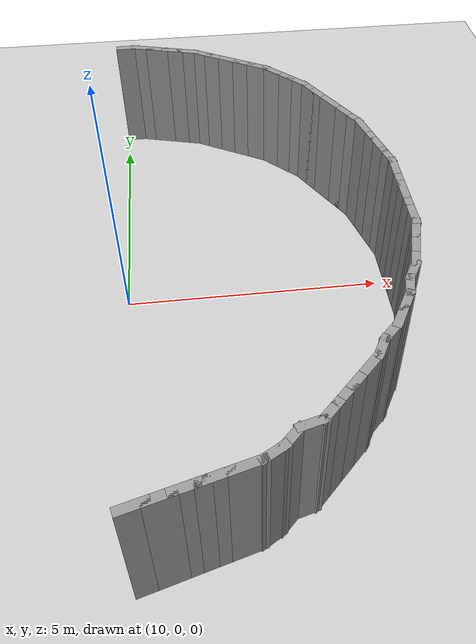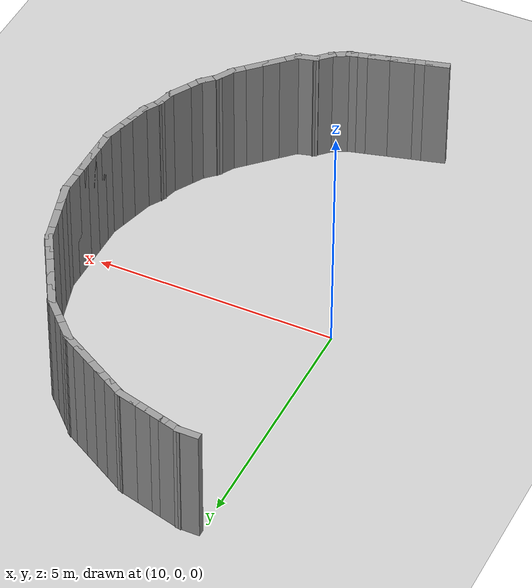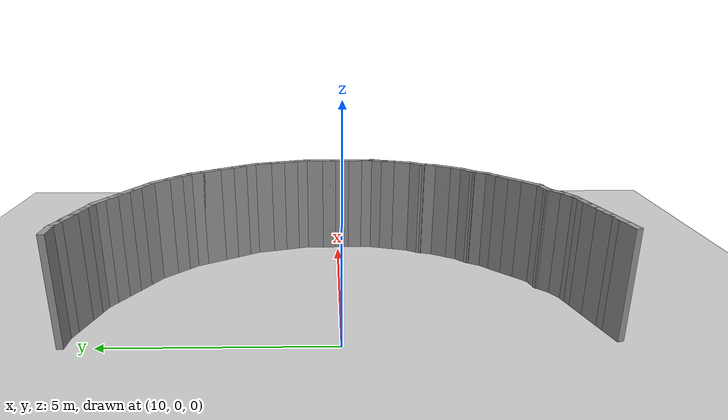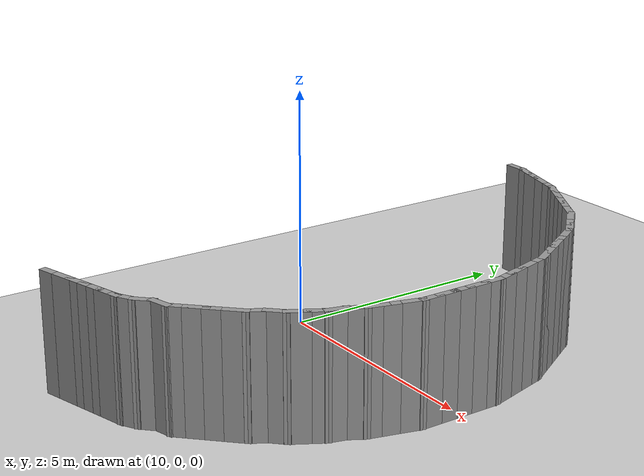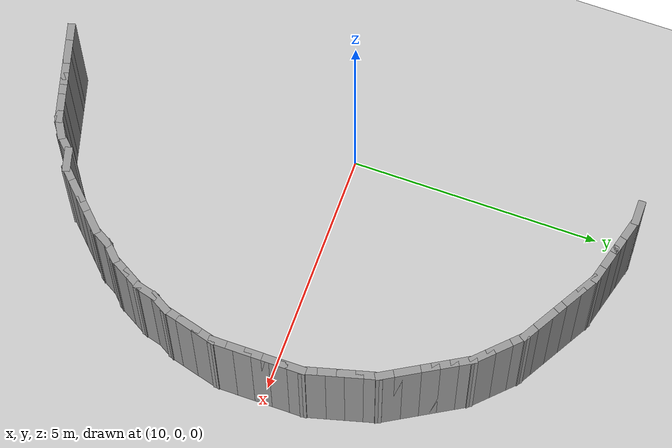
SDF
<sdf version="1.7">
 <world name="default">
  <model name="ground_plane">
   <static>1</static>
   <link name="link">
    <collision name="collision">
     <geometry><plane><normal>0 0 1</normal><size>100 100</size></plane></geometry>
     <surface><friction><ode><mu>100</mu><mu2>50</mu2></ode></friction></surface>
    </collision>
    <visual name="visual">
     <cast_shadows>0</cast_shadows>
     <geometry><plane><normal>0 0 1</normal><size>100 100</size></plane></geometry>
     <material>
      <script><uri>file://media/materials/scripts/gazebo.material</uri><name>Gazebo/Grey</name></script>
     </material>
    </visual>
   </link>
  </model>
  <model name="pool_wall">
   <pose>0.10892 -0.02488 0 0 -0 0</pose>
   <link name="Wall_1">
    <collision name="Wall_1_Collision">
     <geometry><box><size>0.5 0.15 2.5</size></box></geometry>
     <pose>0 0 1.25 0 -0 0</pose>
    </collision>
    <visual name="Wall_1_Visual">
     <pose>0 0 1.25 0 -0 0</pose>
     <geometry><box><size>0.5 0.15 2.5</size></box></geometry>
     <material>
      <script><uri>file://media/materials/scripts/gazebo.material</uri><name>Gazebo/Grey</name></script>
      <ambient>1 1 1 1</ambient>
     </material>
     <meta><layer>0</layer></meta>
    </visual>
    <pose>10.1206 5.7088 0 0 -0 0</pose>
   </link>
   <link name="Wall_10">
    <collision name="Wall_10_Collision">
     <geometry><box><size>0.5 0.15 2.5</size></box></geometry>
     <pose>0 0 1.25 0 -0 0</pose>
    </collision>
    <visual name="Wall_10_Visual">
     <pose>0 0 1.25 0 -0 0</pose>
     <geometry><box><size>0.5 0.15 2.5</size></box></geometry>
     <material>
      <script><uri>file://media/materials/scripts/gazebo.material</uri><name>Gazebo/Grey</name></script>
      <ambient>1 1 1 1</ambient>
     </material>
     <meta><layer>0</layer></meta>
    </visual>
    <pose>13.0119 4.55895 0 0 -0 -0.523599</pose>
   </link>
   <link name="Wall_11">
    <collision name="Wall_11_Collision">
     <geometry><box><size>0.5 0.15 2.5</size></box></geometry>
     <pose>0 0 1.25 0 -0 0</pose>
    </collision>
    <visual name="Wall_11_Visual">
     <pose>0 0 1.25 0 -0 0</pose>
     <geometry><box><size>0.5 0.15 2.5</size></box></geometry>
     <material>
      <script><uri>file://media/materials/scripts/gazebo.material</uri><name>Gazebo/Grey</name></script>
      <ambient>1 1 1 1</ambient>
     </material>
     <meta><layer>0</layer></meta>
    </visual>
    <pose>13.2872 4.3477 0 0 -0 -0.785398</pose>
   </link>
   <link name="Wall_12">
    <collision name="Wall_12_Collision">
     <geometry><box><size>0.5 0.15 2.5</size></box></geometry>
     <pose>0 0 1.25 0 -0 0</pose>
    </collision>
    <visual name="Wall_12_Visual">
     <pose>0 0 1.25 0 -0 0</pose>
     <geometry><box><size>0.5 0.15 2.5</size></box></geometry>
     <material>
      <script><uri>file://media/materials/scripts/gazebo.material</uri><name>Gazebo/Grey</name></script>
      <ambient>1 1 1 1</ambient>
     </material>
     <meta><layer>0</layer></meta>
    </visual>
    <pose>13.5347 4.10022 0 0 -0 -0.785398</pose>
   </link>
   <link name="Wall_13">
    <collision name="Wall_13_Collision">
     <geometry><box><size>0.5 0.15 2.5</size></box></geometry>
     <pose>0 0 1.25 0 -0 0</pose>
    </collision>
    <visual name="Wall_13_Visual">
     <pose>0 0 1.25 0 -0 0</pose>
     <geometry><box><size>0.5 0.15 2.5</size></box></geometry>
     <material>
      <script><uri>file://media/materials/scripts/gazebo.material</uri><name>Gazebo/Grey</name></script>
      <ambient>1 1 1 1</ambient>
     </material>
     <meta><layer>0</layer></meta>
    </visual>
    <pose>13.7822 3.85273 0 0 -0 -0.785398</pose>
   </link>
   <link name="Wall_14">
    <collision name="Wall_14_Collision">
     <geometry><box><size>0.5 0.15 2.5</size></box></geometry>
     <pose>0 0 1.25 0 -0 0</pose>
    </collision>
    <visual name="Wall_14_Visual">
     <pose>0 0 1.25 0 -0 0</pose>
     <geometry><box><size>0.5 0.15 2.5</size></box></geometry>
     <material>
      <script><uri>file://media/materials/scripts/gazebo.material</uri><name>Gazebo/Grey</name></script>
      <ambient>1 1 1 1</ambient>
     </material>
     <meta><layer>0</layer></meta>
    </visual>
    <pose>13.9934 3.57743 0 0 -0 -1.0472</pose>
   </link>
   <link name="Wall_15">
    <collision name="Wall_15_Collision">
     <geometry><box><size>0.5 0.15 2.5</size></box></geometry>
     <pose>0 0 1.25 0 -0 0</pose>
    </collision>
    <visual name="Wall_15_Visual">
     <pose>0 0 1.25 0 -0 0</pose>
     <geometry><box><size>0.5 0.15 2.5</size></box></geometry>
     <material>
      <script><uri>file://media/materials/scripts/gazebo.material</uri><name>Gazebo/Grey</name></script>
      <ambient>1 1 1 1</ambient>
     </material>
     <meta><layer>0</layer></meta>
    </visual>
    <pose>14.1684 3.27432 0 0 -0 -1.0472</pose>
   </link>
   <link name="Wall_16">
    <collision name="Wall_16_Collision">
     <geometry><box><size>0.5 0.15 2.5</size></box></geometry>
     <pose>0 0 1.25 0 -0 0</pose>
    </collision>
    <visual name="Wall_16_Visual">
     <pose>0 0 1.25 0 -0 0</pose>
     <geometry><box><size>0.5 0.15 2.5</size></box></geometry>
     <material>
      <script><uri>file://media/materials/scripts/gazebo.material</uri><name>Gazebo/Grey</name></script>
      <ambient>1 1 1 1</ambient>
     </material>
     <meta><layer>0</layer></meta>
    </visual>
    <pose>14.3434 2.97121 0 0 -0 -1.0472</pose>
   </link>
   <link name="Wall_17">
    <collision name="Wall_17_Collision">
     <geometry><box><size>0.5 0.15 2.5</size></box></geometry>
     <pose>0 0 1.25 0 -0 0</pose>
    </collision>
    <visual name="Wall_17_Visual">
     <pose>0 0 1.25 0 -0 0</pose>
     <geometry><box><size>0.5 0.15 2.5</size></box></geometry>
     <material>
      <script><uri>file://media/materials/scripts/gazebo.material</uri><name>Gazebo/Grey</name></script>
      <ambient>1 1 1 1</ambient>
     </material>
     <meta><layer>0</layer></meta>
    </visual>
    <pose>14.5184 2.66811 0 0 -0 -1.0472</pose>
   </link>
   <link name="Wall_18">
    <collision name="Wall_18_Collision">
     <geometry><box><size>0.5 0.15 2.5</size></box></geometry>
     <pose>0 0 1.25 0 -0 0</pose>
    </collision>
    <visual name="Wall_18_Visual">
     <pose>0 0 1.25 0 -0 0</pose>
     <geometry><box><size>0.5 0.15 2.5</size></box></geometry>
     <material>
      <script><uri>file://media/materials/scripts/gazebo.material</uri><name>Gazebo/Grey</name></script>
      <ambient>1 1 1 1</ambient>
     </material>
     <meta><layer>0</layer></meta>
    </visual>
    <pose>14.6934 2.365 0 0 -0 -1.0472</pose>
   </link>
   <link name="Wall_19">
    <collision name="Wall_19_Collision">
     <geometry><box><size>0.5 0.15 2.5</size></box></geometry>
     <pose>0 0 1.25 0 -0 0</pose>
    </collision>
    <visual name="Wall_19_Visual">
     <pose>0 0 1.25 0 -0 0</pose>
     <geometry><box><size>0.5 0.15 2.5</size></box></geometry>
     <material>
      <script><uri>file://media/materials/scripts/gazebo.material</uri><name>Gazebo/Grey</name></script>
      <ambient>1 1 1 1</ambient>
     </material>
     <meta><layer>0</layer></meta>
    </visual>
    <pose>14.8262 2.0444 0 0 -0 -1.309</pose>
   </link>
   <link name="Wall_2">
    <collision name="Wall_2_Collision">
     <geometry><box><size>0.5 0.15 2.5</size></box></geometry>
     <pose>0 0 1.25 0 -0 0</pose>
    </collision>
    <visual name="Wall_2_Visual">
     <pose>0 0 1.25 0 -0 0</pose>
     <geometry><box><size>0.5 0.15 2.5</size></box></geometry>
     <material>
      <script><uri>file://media/materials/scripts/gazebo.material</uri><name>Gazebo/Grey</name></script>
      <ambient>1 1 1 1</ambient>
     </material>
     <meta><layer>0</layer></meta>
    </visual>
    <pose>10.4647 5.6635 0 0 -0 -0.261799</pose>
   </link>
   <link name="Wall_20">
    <collision name="Wall_20_Collision">
     <geometry><box><size>0.5 0.15 2.5</size></box></geometry>
     <pose>0 0 1.25 0 -0 0</pose>
    </collision>
    <visual name="Wall_20_Visual">
     <pose>0 0 1.25 0 -0 0</pose>
     <geometry><box><size>0.5 0.15 2.5</size></box></geometry>
     <material>
      <script><uri>file://media/materials/scripts/gazebo.material</uri><name>Gazebo/Grey</name></script>
      <ambient>1 1 1 1</ambient>
     </material>
     <meta><layer>0</layer></meta>
    </visual>
    <pose>14.9168 1.70633 0 0 -0 -1.309</pose>
   </link>
   <link name="Wall_21">
    <collision name="Wall_21_Collision">
     <geometry><box><size>0.5 0.15 2.5</size></box></geometry>
     <pose>0 0 1.25 0 -0 0</pose>
    </collision>
    <visual name="Wall_21_Visual">
     <pose>0 0 1.25 0 -0 0</pose>
     <geometry><box><size>0.5 0.15 2.5</size></box></geometry>
     <material>
      <script><uri>file://media/materials/scripts/gazebo.material</uri><name>Gazebo/Grey</name></script>
      <ambient>1 1 1 1</ambient>
     </material>
     <meta><layer>0</layer></meta>
    </visual>
    <pose>15.0074 1.36826 0 0 -0 -1.309</pose>
   </link>
   <link name="Wall_22">
    <collision name="Wall_22_Collision">
     <geometry><box><size>0.5 0.15 2.5</size></box></geometry>
     <pose>0 0 1.25 0 -0 0</pose>
    </collision>
    <visual name="Wall_22_Visual">
     <pose>0 0 1.25 0 -0 0</pose>
     <geometry><box><size>0.5 0.15 2.5</size></box></geometry>
     <material>
      <script><uri>file://media/materials/scripts/gazebo.material</uri><name>Gazebo/Grey</name></script>
      <ambient>1 1 1 1</ambient>
     </material>
     <meta><layer>0</layer></meta>
    </visual>
    <pose>15.098 1.03018 0 0 -0 -1.309</pose>
   </link>
   <link name="Wall_23">
    <collision name="Wall_23_Collision">
     <geometry><box><size>0.5 0.15 2.5</size></box></geometry>
     <pose>0 0 1.25 0 -0 0</pose>
    </collision>
    <visual name="Wall_23_Visual">
     <pose>0 0 1.25 0 -0 0</pose>
     <geometry><box><size>0.5 0.15 2.5</size></box></geometry>
     <material>
      <script><uri>file://media/materials/scripts/gazebo.material</uri><name>Gazebo/Grey</name></script>
      <ambient>1 1 1 1</ambient>
     </material>
     <meta><layer>0</layer></meta>
    </visual>
    <pose>15.1433 0.686145 0 0 -0 -1.5708</pose>
   </link>
   <link name="Wall_24">
    <collision name="Wall_24_Collision">
     <geometry><box><size>0.5 0.15 2.5</size></box></geometry>
     <pose>0 0 1.25 0 -0 0</pose>
    </collision>
    <visual name="Wall_24_Visual">
     <pose>0 0 1.25 0 -0 0</pose>
     <geometry><box><size>0.5 0.15 2.5</size></box></geometry>
     <material>
      <script><uri>file://media/materials/scripts/gazebo.material</uri><name>Gazebo/Grey</name></script>
      <ambient>1 1 1 1</ambient>
     </material>
     <meta><layer>0</layer></meta>
    </visual>
    <pose>15.1433 0.336145 0 0 -0 -1.5708</pose>
   </link>
   <link name="Wall_25">
    <collision name="Wall_25_Collision">
     <geometry><box><size>0.5 0.15 2.5</size></box></geometry>
     <pose>0 0 1.25 0 -0 0</pose>
    </collision>
    <visual name="Wall_25_Visual">
     <pose>0 0 1.25 0 -0 0</pose>
     <geometry><box><size>0.5 0.15 2.5</size></box></geometry>
     <material>
      <script><uri>file://media/materials/scripts/gazebo.material</uri><name>Gazebo/Grey</name></script>
      <ambient>1 1 1 1</ambient>
     </material>
     <meta><layer>0</layer></meta>
    </visual>
    <pose>15.1433 -0.013855 0 0 -0 -1.5708</pose>
   </link>
   <link name="Wall_26">
    <collision name="Wall_26_Collision">
     <geometry><box><size>0.5 0.15 2.5</size></box></geometry>
     <pose>0 0 1.25 0 -0 0</pose>
    </collision>
    <visual name="Wall_26_Visual">
     <pose>0 0 1.25 0 -0 0</pose>
     <geometry><box><size>0.5 0.15 2.5</size></box></geometry>
     <material>
      <script><uri>file://media/materials/scripts/gazebo.material</uri><name>Gazebo/Grey</name></script>
      <ambient>1 1 1 1</ambient>
     </material>
     <meta><layer>0</layer></meta>
    </visual>
    <pose>15.1433 -0.363855 0 0 -0 -1.5708</pose>
   </link>
   <link name="Wall_27">
    <collision name="Wall_27_Collision">
     <geometry><box><size>0.5 0.15 2.5</size></box></geometry>
     <pose>0 0 1.25 0 -0 0</pose>
    </collision>
    <visual name="Wall_27_Visual">
     <pose>0 0 1.25 0 -0 0</pose>
     <geometry><box><size>0.5 0.15 2.5</size></box></geometry>
     <material>
      <script><uri>file://media/materials/scripts/gazebo.material</uri><name>Gazebo/Grey</name></script>
      <ambient>1 1 1 1</ambient>
     </material>
     <meta><layer>0</layer></meta>
    </visual>
    <pose>15.1433 -0.713855 0 0 -0 -1.5708</pose>
   </link>
   <link name="Wall_28">
    <collision name="Wall_28_Collision">
     <geometry><box><size>0.5 0.15 2.5</size></box></geometry>
     <pose>0 0 1.25 0 -0 0</pose>
    </collision>
    <visual name="Wall_28_Visual">
     <pose>0 0 1.25 0 -0 0</pose>
     <geometry><box><size>0.5 0.15 2.5</size></box></geometry>
     <material>
      <script><uri>file://media/materials/scripts/gazebo.material</uri><name>Gazebo/Grey</name></script>
      <ambient>1 1 1 1</ambient>
     </material>
     <meta><layer>0</layer></meta>
    </visual>
    <pose>15.098 -1.05789 0 0 -0 -1.8326</pose>
   </link>
   <link name="Wall_29">
    <collision name="Wall_29_Collision">
     <geometry><box><size>0.5 0.15 2.5</size></box></geometry>
     <pose>0 0 1.25 0 -0 0</pose>
    </collision>
    <visual name="Wall_29_Visual">
     <pose>0 0 1.25 0 -0 0</pose>
     <geometry><box><size>0.5 0.15 2.5</size></box></geometry>
     <material>
      <script><uri>file://media/materials/scripts/gazebo.material</uri><name>Gazebo/Grey</name></script>
      <ambient>1 1 1 1</ambient>
     </material>
     <meta><layer>0</layer></meta>
    </visual>
    <pose>15.0074 -1.39597 0 0 -0 -1.8326</pose>
   </link>
   <link name="Wall_3">
    <collision name="Wall_3_Collision">
     <geometry><box><size>0.5 0.15 2.5</size></box></geometry>
     <pose>0 0 1.25 0 -0 0</pose>
    </collision>
    <visual name="Wall_3_Visual">
     <pose>0 0 1.25 0 -0 0</pose>
     <geometry><box><size>0.5 0.15 2.5</size></box></geometry>
     <material>
      <script><uri>file://media/materials/scripts/gazebo.material</uri><name>Gazebo/Grey</name></script>
      <ambient>1 1 1 1</ambient>
     </material>
     <meta><layer>0</layer></meta>
    </visual>
    <pose>10.8027 5.57292 0 0 -0 -0.261799</pose>
   </link>
   <link name="Wall_30">
    <collision name="Wall_30_Collision">
     <geometry><box><size>0.5 0.15 2.5</size></box></geometry>
     <pose>0 0 1.25 0 -0 0</pose>
    </collision>
    <visual name="Wall_30_Visual">
     <pose>0 0 1.25 0 -0 0</pose>
     <geometry><box><size>0.5 0.15 2.5</size></box></geometry>
     <material>
      <script><uri>file://media/materials/scripts/gazebo.material</uri><name>Gazebo/Grey</name></script>
      <ambient>1 1 1 1</ambient>
     </material>
     <meta><layer>0</layer></meta>
    </visual>
    <pose>14.9168 -1.73404 0 0 -0 -1.8326</pose>
   </link>
   <link name="Wall_31">
    <collision name="Wall_31_Collision">
     <geometry><box><size>0.5 0.15 2.5</size></box></geometry>
     <pose>0 0 1.25 0 -0 0</pose>
    </collision>
    <visual name="Wall_31_Visual">
     <pose>0 0 1.25 0 -0 0</pose>
     <geometry><box><size>0.5 0.15 2.5</size></box></geometry>
     <material>
      <script><uri>file://media/materials/scripts/gazebo.material</uri><name>Gazebo/Grey</name></script>
      <ambient>1 1 1 1</ambient>
     </material>
     <meta><layer>0</layer></meta>
    </visual>
    <pose>14.784 -2.05463 0 0 -0 -2.0944</pose>
   </link>
   <link name="Wall_32">
    <collision name="Wall_32_Collision">
     <geometry><box><size>0.5 0.15 2.5</size></box></geometry>
     <pose>0 0 1.25 0 -0 0</pose>
    </collision>
    <visual name="Wall_32_Visual">
     <pose>0 0 1.25 0 -0 0</pose>
     <geometry><box><size>0.5 0.15 2.5</size></box></geometry>
     <material>
      <script><uri>file://media/materials/scripts/gazebo.material</uri><name>Gazebo/Grey</name></script>
      <ambient>1 1 1 1</ambient>
     </material>
     <meta><layer>0</layer></meta>
    </visual>
    <pose>14.6512 -2.37522 0 0 -0 -1.8326</pose>
   </link>
   <link name="Wall_33">
    <collision name="Wall_33_Collision">
     <geometry><box><size>0.5 0.15 2.5</size></box></geometry>
     <pose>0 0 1.25 0 -0 0</pose>
    </collision>
    <visual name="Wall_33_Visual">
     <pose>0 0 1.25 0 -0 0</pose>
     <geometry><box><size>0.5 0.15 2.5</size></box></geometry>
     <material>
      <script><uri>file://media/materials/scripts/gazebo.material</uri><name>Gazebo/Grey</name></script>
      <ambient>1 1 1 1</ambient>
     </material>
     <meta><layer>0</layer></meta>
    </visual>
    <pose>14.5184 -2.69581 0 0 -0 -2.0944</pose>
   </link>
   <link name="Wall_34">
    <collision name="Wall_34_Collision">
     <geometry><box><size>0.5 0.15 2.5</size></box></geometry>
     <pose>0 0 1.25 0 -0 0</pose>
    </collision>
    <visual name="Wall_34_Visual">
     <pose>0 0 1.25 0 -0 0</pose>
     <geometry><box><size>0.5 0.15 2.5</size></box></geometry>
     <material>
      <script><uri>file://media/materials/scripts/gazebo.material</uri><name>Gazebo/Grey</name></script>
      <ambient>1 1 1 1</ambient>
     </material>
     <meta><layer>0</layer></meta>
    </visual>
    <pose>14.3434 -2.99892 0 0 -0 -2.0944</pose>
   </link>
   <link name="Wall_35">
    <collision name="Wall_35_Collision">
     <geometry><box><size>0.5 0.15 2.5</size></box></geometry>
     <pose>0 0 1.25 0 -0 0</pose>
    </collision>
    <visual name="Wall_35_Visual">
     <pose>0 0 1.25 0 -0 0</pose>
     <geometry><box><size>0.5 0.15 2.5</size></box></geometry>
     <material>
      <script><uri>file://media/materials/scripts/gazebo.material</uri><name>Gazebo/Grey</name></script>
      <ambient>1 1 1 1</ambient>
     </material>
     <meta><layer>0</layer></meta>
    </visual>
    <pose>14.1322 -3.27422 0 0 -0 -2.35619</pose>
   </link>
   <link name="Wall_36">
    <collision name="Wall_36_Collision">
     <geometry><box><size>0.5 0.15 2.5</size></box></geometry>
     <pose>0 0 1.25 0 -0 0</pose>
    </collision>
    <visual name="Wall_36_Visual">
     <pose>0 0 1.25 0 -0 0</pose>
     <geometry><box><size>0.5 0.15 2.5</size></box></geometry>
     <material>
      <script><uri>file://media/materials/scripts/gazebo.material</uri><name>Gazebo/Grey</name></script>
      <ambient>1 1 1 1</ambient>
     </material>
     <meta><layer>0</layer></meta>
    </visual>
    <pose>13.9209 -3.54952 0 0 -0 -2.0944</pose>
   </link>
   <link name="Wall_37">
    <collision name="Wall_37_Collision">
     <geometry><box><size>0.5 0.15 2.5</size></box></geometry>
     <pose>0 0 1.25 0 -0 0</pose>
    </collision>
    <visual name="Wall_37_Visual">
     <pose>0 0 1.25 0 -0 0</pose>
     <geometry><box><size>0.5 0.15 2.5</size></box></geometry>
     <material>
      <script><uri>file://media/materials/scripts/gazebo.material</uri><name>Gazebo/Grey</name></script>
      <ambient>1 1 1 1</ambient>
     </material>
     <meta><layer>0</layer></meta>
    </visual>
    <pose>13.7097 -3.82482 0 0 -0 -2.35619</pose>
   </link>
   <link name="Wall_38">
    <collision name="Wall_38_Collision">
     <geometry><box><size>0.5 0.15 2.5</size></box></geometry>
     <pose>0 0 1.25 0 -0 0</pose>
    </collision>
    <visual name="Wall_38_Visual">
     <pose>0 0 1.25 0 -0 0</pose>
     <geometry><box><size>0.5 0.15 2.5</size></box></geometry>
     <material>
      <script><uri>file://media/materials/scripts/gazebo.material</uri><name>Gazebo/Grey</name></script>
      <ambient>1 1 1 1</ambient>
     </material>
     <meta><layer>0</layer></meta>
    </visual>
    <pose>13.4622 -4.07231 0 0 -0 -2.35619</pose>
   </link>
   <link name="Wall_39">
    <collision name="Wall_39_Collision">
     <geometry><box><size>0.5 0.15 2.5</size></box></geometry>
     <pose>0 0 1.25 0 -0 0</pose>
    </collision>
    <visual name="Wall_39_Visual">
     <pose>0 0 1.25 0 -0 0</pose>
     <geometry><box><size>0.5 0.15 2.5</size></box></geometry>
     <material>
      <script><uri>file://media/materials/scripts/gazebo.material</uri><name>Gazebo/Grey</name></script>
      <ambient>1 1 1 1</ambient>
     </material>
     <meta><layer>0</layer></meta>
    </visual>
    <pose>13.2147 -4.31979 0 0 -0 -2.35619</pose>
   </link>
   <link name="Wall_4">
    <collision name="Wall_4_Collision">
     <geometry><box><size>0.5 0.15 2.5</size></box></geometry>
     <pose>0 0 1.25 0 -0 0</pose>
    </collision>
    <visual name="Wall_4_Visual">
     <pose>0 0 1.25 0 -0 0</pose>
     <geometry><box><size>0.5 0.15 2.5</size></box></geometry>
     <material>
      <script><uri>file://media/materials/scripts/gazebo.material</uri><name>Gazebo/Grey</name></script>
      <ambient>1 1 1 1</ambient>
     </material>
     <meta><layer>0</layer></meta>
    </visual>
    <pose>11.1408 5.48233 0 0 -0 -0.261799</pose>
   </link>
   <link name="Wall_40">
    <collision name="Wall_40_Collision">
     <geometry><box><size>0.5 0.15 2.5</size></box></geometry>
     <pose>0 0 1.25 0 -0 0</pose>
    </collision>
    <visual name="Wall_40_Visual">
     <pose>0 0 1.25 0 -0 0</pose>
     <geometry><box><size>0.5 0.15 2.5</size></box></geometry>
     <material>
      <script><uri>file://media/materials/scripts/gazebo.material</uri><name>Gazebo/Grey</name></script>
      <ambient>1 1 1 1</ambient>
     </material>
     <meta><layer>0</layer></meta>
    </visual>
    <pose>12.9672 -4.56728 0 0 -0 -2.35619</pose>
   </link>
   <link name="Wall_41">
    <collision name="Wall_41_Collision">
     <geometry><box><size>0.5 0.15 2.5</size></box></geometry>
     <pose>0 0 1.25 0 -0 0</pose>
    </collision>
    <visual name="Wall_41_Visual">
     <pose>0 0 1.25 0 -0 0</pose>
     <geometry><box><size>0.5 0.15 2.5</size></box></geometry>
     <material>
      <script><uri>file://media/materials/scripts/gazebo.material</uri><name>Gazebo/Grey</name></script>
      <ambient>1 1 1 1</ambient>
     </material>
     <meta><layer>0</layer></meta>
    </visual>
    <pose>12.6744 -4.73632 0 0 -0 -2.87979</pose>
   </link>
   <link name="Wall_42">
    <collision name="Wall_42_Collision">
     <geometry><box><size>0.5 0.15 2.5</size></box></geometry>
     <pose>0 0 1.25 0 -0 0</pose>
    </collision>
    <visual name="Wall_42_Visual">
     <pose>0 0 1.25 0 -0 0</pose>
     <geometry><box><size>0.5 0.15 2.5</size></box></geometry>
     <material>
      <script><uri>file://media/materials/scripts/gazebo.material</uri><name>Gazebo/Grey</name></script>
      <ambient>1 1 1 1</ambient>
     </material>
     <meta><layer>0</layer></meta>
    </visual>
    <pose>12.3817 -4.90535 0 0 -0 -2.35619</pose>
   </link>
   <link name="Wall_43">
    <collision name="Wall_43_Collision">
     <geometry><box><size>0.5 0.15 2.5</size></box></geometry>
     <pose>0 0 1.25 0 -0 0</pose>
    </collision>
    <visual name="Wall_43_Visual">
     <pose>0 0 1.25 0 -0 0</pose>
     <geometry><box><size>0.5 0.15 2.5</size></box></geometry>
     <material>
      <script><uri>file://media/materials/scripts/gazebo.material</uri><name>Gazebo/Grey</name></script>
      <ambient>1 1 1 1</ambient>
     </material>
     <meta><layer>0</layer></meta>
    </visual>
    <pose>12.1064 -5.1166 0 0 -0 -2.61799</pose>
   </link>
   <link name="Wall_44">
    <collision name="Wall_44_Collision">
     <geometry><box><size>0.25 0.15 2.5</size></box></geometry>
     <pose>0 0 1.25 0 -0 0</pose>
    </collision>
    <visual name="Wall_44_Visual">
     <pose>0 0 1.25 0 -0 0</pose>
     <geometry><box><size>0.25 0.15 2.5</size></box></geometry>
     <material>
      <script><uri>file://media/materials/scripts/gazebo.material</uri><name>Gazebo/Grey</name></script>
      <ambient>1 1 1 1</ambient>
     </material>
     <meta><layer>0</layer></meta>
    </visual>
    <pose>11.9065 -5.21704 0 0 -0 -2.87979</pose>
   </link>
   <link name="Wall_45">
    <collision name="Wall_45_Collision">
     <geometry><box><size>0.5 0.15 2.5</size></box></geometry>
     <pose>0 0 1.25 0 -0 0</pose>
    </collision>
    <visual name="Wall_45_Visual">
     <pose>0 0 1.25 0 -0 0</pose>
     <geometry><box><size>0.5 0.15 2.5</size></box></geometry>
     <material>
      <script><uri>file://media/materials/scripts/gazebo.material</uri><name>Gazebo/Grey</name></script>
      <ambient>1 1 1 1</ambient>
     </material>
     <meta><layer>0</layer></meta>
    </visual>
    <pose>11.6892 -5.27527 0 0 -0 -2.87979</pose>
   </link>
   <link name="Wall_46">
    <collision name="Wall_46_Collision">
     <geometry><box><size>0.5 0.15 2.5</size></box></geometry>
     <pose>0 0 1.25 0 -0 0</pose>
    </collision>
    <visual name="Wall_46_Visual">
     <pose>0 0 1.25 0 -0 0</pose>
     <geometry><box><size>0.5 0.15 2.5</size></box></geometry>
     <material>
      <script><uri>file://media/materials/scripts/gazebo.material</uri><name>Gazebo/Grey</name></script>
      <ambient>1 1 1 1</ambient>
     </material>
     <meta><layer>0</layer></meta>
    </visual>
    <pose>11.3511 -5.36586 0 0 -0 -2.87979</pose>
   </link>
   <link name="Wall_47">
    <collision name="Wall_47_Collision">
     <geometry><box><size>0.25 0.15 2.5</size></box></geometry>
     <pose>0 0 1.25 0 -0 0</pose>
    </collision>
    <visual name="Wall_47_Visual">
     <pose>0 0 1.25 0 -0 0</pose>
     <geometry><box><size>0.25 0.15 2.5</size></box></geometry>
     <material>
      <script><uri>file://media/materials/scripts/gazebo.material</uri><name>Gazebo/Grey</name></script>
      <ambient>1 1 1 1</ambient>
     </material>
     <meta><layer>0</layer></meta>
    </visual>
    <pose>11.1338 -5.42409 0 0 -0 -2.87979</pose>
   </link>
   <link name="Wall_48">
    <collision name="Wall_48_Collision">
     <geometry><box><size>0.5 0.15 2.5</size></box></geometry>
     <pose>0 0 1.25 0 -0 0</pose>
    </collision>
    <visual name="Wall_48_Visual">
     <pose>0 0 1.25 0 -0 0</pose>
     <geometry><box><size>0.5 0.15 2.5</size></box></geometry>
     <material>
      <script><uri>file://media/materials/scripts/gazebo.material</uri><name>Gazebo/Grey</name></script>
      <ambient>1 1 1 1</ambient>
     </material>
     <meta><layer>0</layer></meta>
    </visual>
    <pose>10.9164 -5.48233 0 0 -0 -2.87979</pose>
   </link>
   <link name="Wall_49">
    <collision name="Wall_49_Collision">
     <geometry><box><size>0.5 0.15 2.5</size></box></geometry>
     <pose>0 0 1.25 0 -0 0</pose>
    </collision>
    <visual name="Wall_49_Visual">
     <pose>0 0 1.25 0 -0 0</pose>
     <geometry><box><size>0.5 0.15 2.5</size></box></geometry>
     <material>
      <script><uri>file://media/materials/scripts/gazebo.material</uri><name>Gazebo/Grey</name></script>
      <ambient>1 1 1 1</ambient>
     </material>
     <meta><layer>0</layer></meta>
    </visual>
    <pose>10.5784 -5.57292 0 0 -0 -2.87979</pose>
   </link>
   <link name="Wall_5">
    <collision name="Wall_5_Collision">
     <geometry><box><size>0.5 0.15 2.5</size></box></geometry>
     <pose>0 0 1.25 0 -0 0</pose>
    </collision>
    <visual name="Wall_5_Visual">
     <pose>0 0 1.25 0 -0 0</pose>
     <geometry><box><size>0.5 0.15 2.5</size></box></geometry>
     <material>
      <script><uri>file://media/materials/scripts/gazebo.material</uri><name>Gazebo/Grey</name></script>
      <ambient>1 1 1 1</ambient>
     </material>
     <meta><layer>0</layer></meta>
    </visual>
    <pose>11.4789 5.39174 0 0 -0 -0.261799</pose>
   </link>
   <link name="Wall_50">
    <collision name="Wall_50_Collision">
     <geometry><box><size>0.5 0.15 2.5</size></box></geometry>
     <pose>0 0 1.25 0 -0 0</pose>
    </collision>
    <visual name="Wall_50_Visual">
     <pose>0 0 1.25 0 -0 0</pose>
     <geometry><box><size>0.5 0.15 2.5</size></box></geometry>
     <material>
      <script><uri>file://media/materials/scripts/gazebo.material</uri><name>Gazebo/Grey</name></script>
      <ambient>1 1 1 1</ambient>
     </material>
     <meta><layer>0</layer></meta>
    </visual>
    <pose>10.2403 -5.6635 0 0 -0 -2.87979</pose>
   </link>
   <link name="Wall_6">
    <collision name="Wall_6_Collision">
     <geometry><box><size>0.5 0.15 2.5</size></box></geometry>
     <pose>0 0 1.25 0 -0 0</pose>
    </collision>
    <visual name="Wall_6_Visual">
     <pose>0 0 1.25 0 -0 0</pose>
     <geometry><box><size>0.5 0.15 2.5</size></box></geometry>
     <material>
      <script><uri>file://media/materials/scripts/gazebo.material</uri><name>Gazebo/Grey</name></script>
      <ambient>1 1 1 1</ambient>
     </material>
     <meta><layer>0</layer></meta>
    </visual>
    <pose>11.7995 5.25895 0 0 -0 -0.523599</pose>
   </link>
   <link name="Wall_7">
    <collision name="Wall_7_Collision">
     <geometry><box><size>0.5 0.15 2.5</size></box></geometry>
     <pose>0 0 1.25 0 -0 0</pose>
    </collision>
    <visual name="Wall_7_Visual">
     <pose>0 0 1.25 0 -0 0</pose>
     <geometry><box><size>0.5 0.15 2.5</size></box></geometry>
     <material>
      <script><uri>file://media/materials/scripts/gazebo.material</uri><name>Gazebo/Grey</name></script>
      <ambient>1 1 1 1</ambient>
     </material>
     <meta><layer>0</layer></meta>
    </visual>
    <pose>12.1026 5.08395 0 0 -0 -0.523599</pose>
   </link>
   <link name="Wall_8">
    <collision name="Wall_8_Collision">
     <geometry><box><size>0.5 0.15 2.5</size></box></geometry>
     <pose>0 0 1.25 0 -0 0</pose>
    </collision>
    <visual name="Wall_8_Visual">
     <pose>0 0 1.25 0 -0 0</pose>
     <geometry><box><size>0.5 0.15 2.5</size></box></geometry>
     <material>
      <script><uri>file://media/materials/scripts/gazebo.material</uri><name>Gazebo/Grey</name></script>
      <ambient>1 1 1 1</ambient>
     </material>
     <meta><layer>0</layer></meta>
    </visual>
    <pose>12.4057 4.90895 0 0 -0 -0.523599</pose>
   </link>
   <link name="Wall_9">
    <collision name="Wall_9_Collision">
     <geometry><box><size>0.5 0.15 2.5</size></box></geometry>
     <pose>0 0 1.25 0 -0 0</pose>
    </collision>
    <visual name="Wall_9_Visual">
     <pose>0 0 1.25 0 -0 0</pose>
     <geometry><box><size>0.5 0.15 2.5</size></box></geometry>
     <material>
      <script><uri>file://media/materials/scripts/gazebo.material</uri><name>Gazebo/Grey</name></script>
      <ambient>1 1 1 1</ambient>
     </material>
     <meta><layer>0</layer></meta>
    </visual>
    <pose>12.7088 4.73395 0 0 -0 -0.523599</pose>
   </link>
   <static>1</static>
  </model>
 </world>
</sdf>
